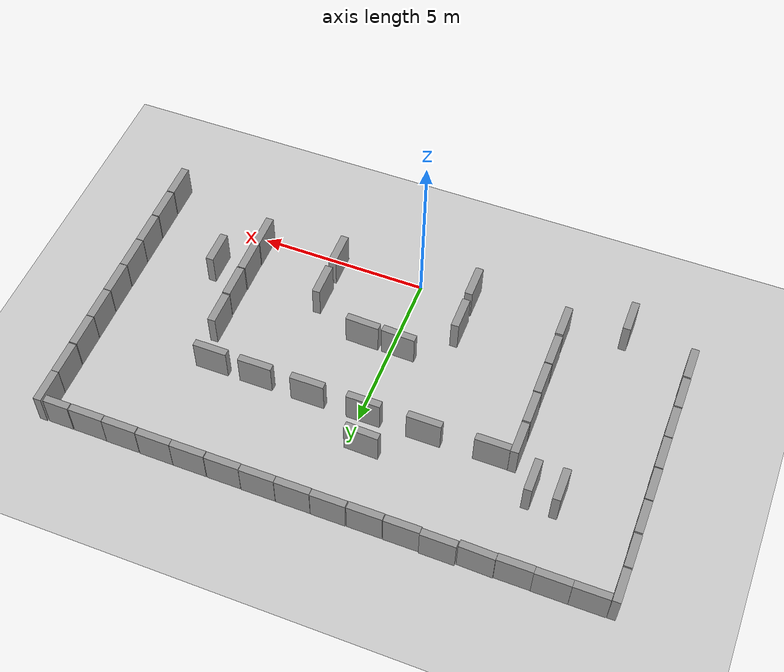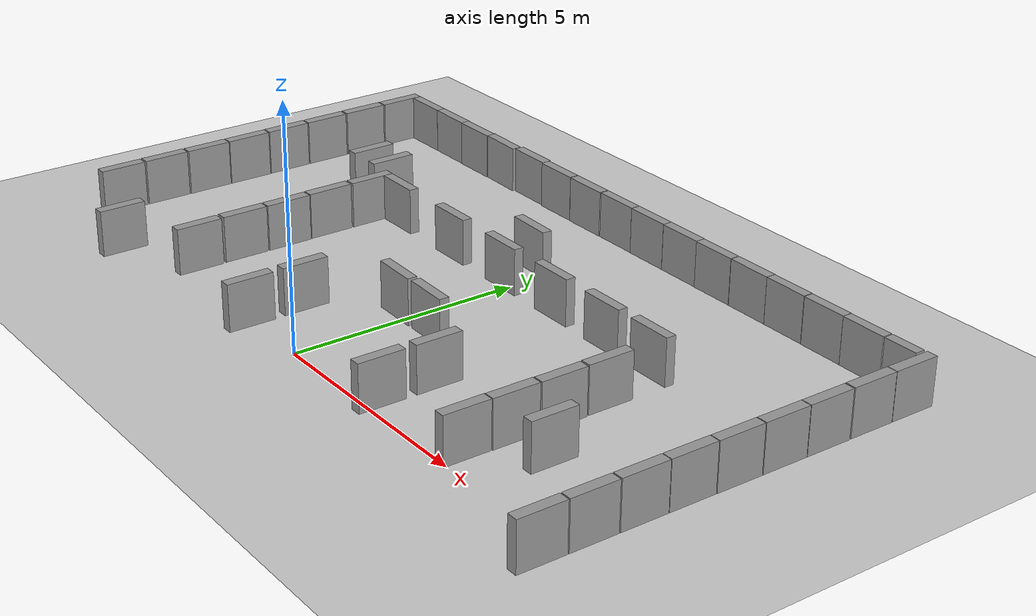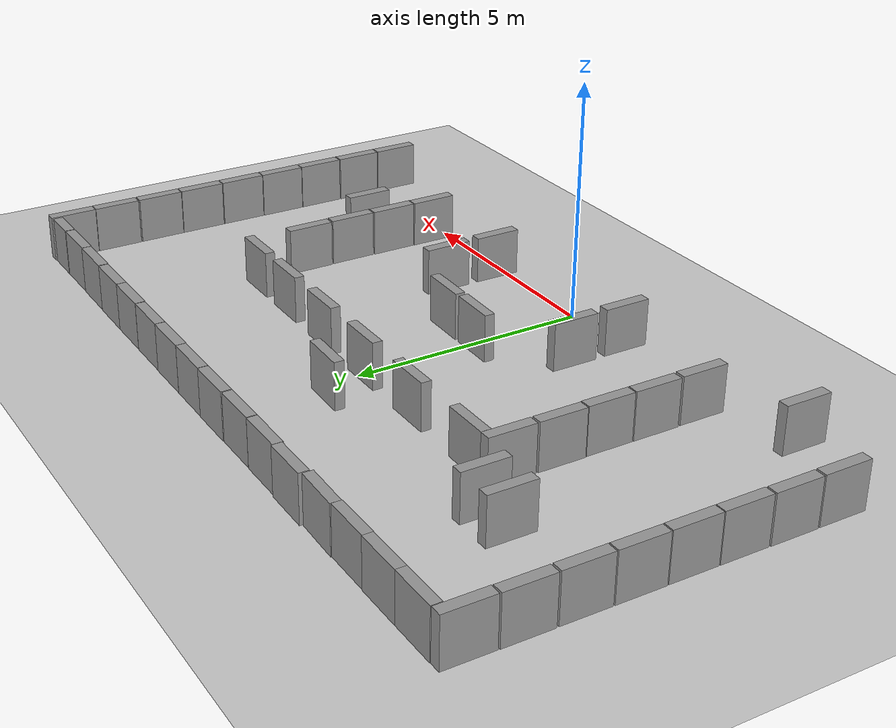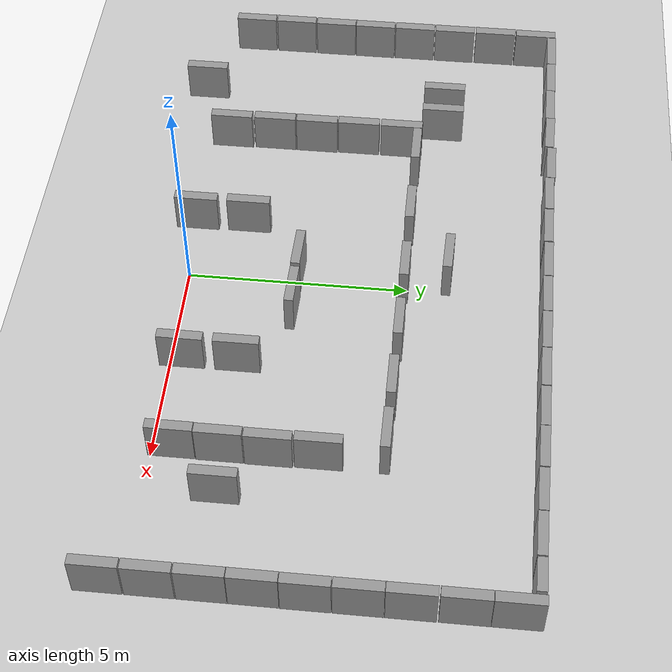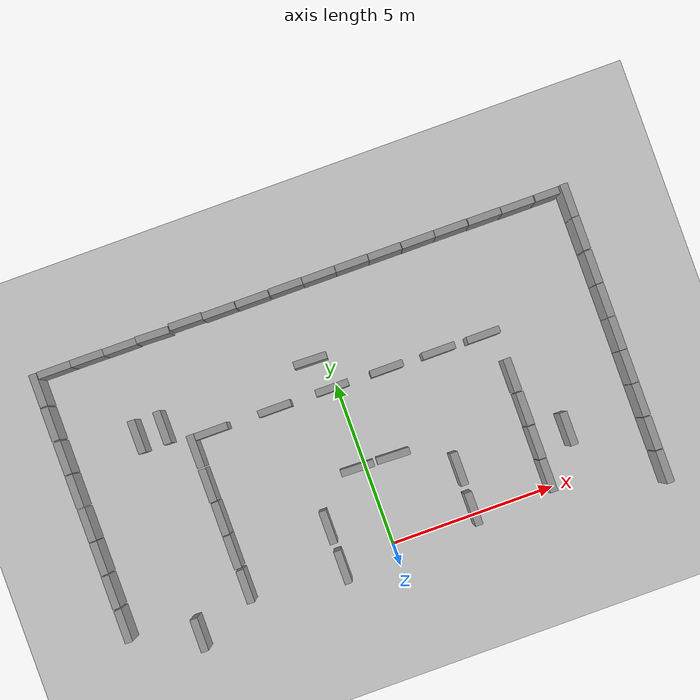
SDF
<sdf version="1.6">
 <world name="default">
  <model name="ground_plane">
   <static>1</static>
   <static>1</static>
   <link name="link">
    <collision name="collision">
     <geometry><plane><normal>0 0 1</normal><size>100 100</size></plane></geometry>
     <surface><friction><ode><mu>100</mu><mu2>50</mu2></ode></friction></surface>
    </collision>
    <visual name="visual">
     <cast_shadows>0</cast_shadows>
     <geometry><plane><normal>0 0 1</normal><size>100 100</size></plane></geometry>
     <material>
      <script><uri>file://media/materials/scripts/gazebo.material</uri><name>Gazebo/Grey</name></script>
     </material>
    </visual>
   </link>
  </model>
  <model name="unit_box_clone">
   <pose>-7.49845 8.12021 0.5 0 -0 0.000459</pose>
   <link name="link">
    <inertial>
     <mass>1</mass>
     <inertia>
      <ixx>0.166667</ixx>
      <ixy>0</ixy>
      <ixz>0</ixz>
      <iyy>0.166667</iyy>
      <iyz>0</iyz>
      <izz>0.166667</izz>
     </inertia>
    </inertial>
    <collision name="collision"><geometry><box><size>1 0.210541 1</size></box></geometry></collision>
    <visual name="visual">
     <geometry><box><size>1 0.210541 1</size></box></geometry>
     <material>
      <script><name>Gazebo/Grey</name><uri>file://media/materials/scripts/gazebo.material</uri></script>
     </material>
    </visual>
   </link>
  </model>
  <model name="unit_box_clone_0">
   <pose>-6.49725 8.11967 0.5 0 -0 -0.00258</pose>
   <link name="link">
    <inertial>
     <mass>1</mass>
     <inertia>
      <ixx>0.166667</ixx>
      <ixy>0</ixy>
      <ixz>0</ixz>
      <iyy>0.166667</iyy>
      <iyz>0</iyz>
      <izz>0.166667</izz>
     </inertia>
    </inertial>
    <collision name="collision"><geometry><box><size>1 0.210541 1</size></box></geometry></collision>
    <visual name="visual">
     <geometry><box><size>1 0.210541 1</size></box></geometry>
     <material>
      <script><name>Gazebo/Grey</name><uri>file://media/materials/scripts/gazebo.material</uri></script>
     </material>
    </visual>
   </link>
  </model>
  <model name="unit_box_clone_1">
   <pose>-5.49726 8.10836 0.499732 -2e-06 -7e-06 -0.002666</pose>
   <link name="link">
    <inertial>
     <mass>1</mass>
     <inertia>
      <ixx>0.166667</ixx>
      <ixy>0</ixy>
      <ixz>0</ixz>
      <iyy>0.166667</iyy>
      <iyz>0</iyz>
      <izz>0.166667</izz>
     </inertia>
    </inertial>
    <collision name="collision"><geometry><box><size>1 0.210541 1</size></box></geometry></collision>
    <visual name="visual">
     <geometry><box><size>1 0.210541 1</size></box></geometry>
     <material>
      <script><name>Gazebo/Grey</name><uri>file://media/materials/scripts/gazebo.material</uri></script>
     </material>
    </visual>
   </link>
  </model>
  <model name="unit_box_clone_2">
   <pose>-4.49488 8.11064 0.499996 -0 2e-06 -0.026421</pose>
   <link name="link">
    <inertial>
     <mass>1</mass>
     <inertia>
      <ixx>0.166667</ixx>
      <ixy>0</ixy>
      <ixz>0</ixz>
      <iyy>0.166667</iyy>
      <iyz>0</iyz>
      <izz>0.166667</izz>
     </inertia>
    </inertial>
    <collision name="collision"><geometry><box><size>1 0.210541 1</size></box></geometry></collision>
    <visual name="visual">
     <geometry><box><size>1 0.210541 1</size></box></geometry>
     <material>
      <script><name>Gazebo/Grey</name><uri>file://media/materials/scripts/gazebo.material</uri></script>
     </material>
    </visual>
   </link>
  </model>
  <model name="unit_box_clone_3">
   <pose>-3.46836 8.15007 0.499999 -1e-06 -2e-06 -0.007855</pose>
   <link name="link">
    <inertial>
     <mass>1</mass>
     <inertia>
      <ixx>0.166667</ixx>
      <ixy>0</ixy>
      <ixz>0</ixz>
      <iyy>0.166667</iyy>
      <iyz>0</iyz>
      <izz>0.166667</izz>
     </inertia>
    </inertial>
    <collision name="collision"><geometry><box><size>1 0.210541 1</size></box></geometry></collision>
    <visual name="visual">
     <geometry><box><size>1 0.210541 1</size></box></geometry>
     <material>
      <script><name>Gazebo/Grey</name><uri>file://media/materials/scripts/gazebo.material</uri></script>
     </material>
    </visual>
   </link>
  </model>
  <model name="unit_box_clone_4">
   <pose>-2.46316 8.1189 0.5 0 -0 0.000459</pose>
   <link name="link">
    <inertial>
     <mass>1</mass>
     <inertia>
      <ixx>0.166667</ixx>
      <ixy>0</ixy>
      <ixz>0</ixz>
      <iyy>0.166667</iyy>
      <iyz>0</iyz>
      <izz>0.166667</izz>
     </inertia>
    </inertial>
    <collision name="collision"><geometry><box><size>1 0.210541 1</size></box></geometry></collision>
    <visual name="visual">
     <geometry><box><size>1 0.210541 1</size></box></geometry>
     <material>
      <script><name>Gazebo/Grey</name><uri>file://media/materials/scripts/gazebo.material</uri></script>
     </material>
    </visual>
   </link>
  </model>
  <model name="unit_box_clone_5">
   <pose>-1.44425 8.11224 0.5 0 -0 0.000459</pose>
   <link name="link">
    <inertial>
     <mass>1</mass>
     <inertia>
      <ixx>0.166667</ixx>
      <ixy>0</ixy>
      <ixz>0</ixz>
      <iyy>0.166667</iyy>
      <iyz>0</iyz>
      <izz>0.166667</izz>
     </inertia>
    </inertial>
    <collision name="collision"><geometry><box><size>1 0.210541 1</size></box></geometry></collision>
    <visual name="visual">
     <geometry><box><size>1 0.210541 1</size></box></geometry>
     <material>
      <script><name>Gazebo/Grey</name><uri>file://media/materials/scripts/gazebo.material</uri></script>
     </material>
    </visual>
   </link>
  </model>
  <model name="unit_box_clone_6">
   <pose>-0.418686 8.11889 0.5 0 -0 0.000459</pose>
   <link name="link">
    <inertial>
     <mass>1</mass>
     <inertia>
      <ixx>0.166667</ixx>
      <ixy>0</ixy>
      <ixz>0</ixz>
      <iyy>0.166667</iyy>
      <iyz>0</iyz>
      <izz>0.166667</izz>
     </inertia>
    </inertial>
    <collision name="collision"><geometry><box><size>1 0.210541 1</size></box></geometry></collision>
    <visual name="visual">
     <geometry><box><size>1 0.210541 1</size></box></geometry>
     <material>
      <script><name>Gazebo/Grey</name><uri>file://media/materials/scripts/gazebo.material</uri></script>
     </material>
    </visual>
   </link>
  </model>
  <model name="unit_box_clone_7">
   <pose>0.592833 8.11176 0.5 0 -0 0.000459</pose>
   <link name="link">
    <inertial>
     <mass>1</mass>
     <inertia>
      <ixx>0.166667</ixx>
      <ixy>0</ixy>
      <ixz>0</ixz>
      <iyy>0.166667</iyy>
      <iyz>0</iyz>
      <izz>0.166667</izz>
     </inertia>
    </inertial>
    <collision name="collision"><geometry><box><size>1 0.210541 1</size></box></geometry></collision>
    <visual name="visual">
     <geometry><box><size>1 0.210541 1</size></box></geometry>
     <material>
      <script><name>Gazebo/Grey</name><uri>file://media/materials/scripts/gazebo.material</uri></script>
     </material>
    </visual>
   </link>
  </model>
  <model name="unit_box_clone_8">
   <pose>1.60043 8.11027 0.5 0 -0 0.000459</pose>
   <link name="link">
    <inertial>
     <mass>1</mass>
     <inertia>
      <ixx>0.166667</ixx>
      <ixy>0</ixy>
      <ixz>0</ixz>
      <iyy>0.166667</iyy>
      <iyz>0</iyz>
      <izz>0.166667</izz>
     </inertia>
    </inertial>
    <collision name="collision"><geometry><box><size>1 0.210541 1</size></box></geometry></collision>
    <visual name="visual">
     <geometry><box><size>1 0.210541 1</size></box></geometry>
     <material>
      <script><name>Gazebo/Grey</name><uri>file://media/materials/scripts/gazebo.material</uri></script>
     </material>
    </visual>
   </link>
  </model>
  <model name="unit_box_clone_9">
   <pose>2.60987 8.10308 0.5 0 -0 0.000459</pose>
   <link name="link">
    <inertial>
     <mass>1</mass>
     <inertia>
      <ixx>0.166667</ixx>
      <ixy>0</ixy>
      <ixz>0</ixz>
      <iyy>0.166667</iyy>
      <iyz>0</iyz>
      <izz>0.166667</izz>
     </inertia>
    </inertial>
    <collision name="collision"><geometry><box><size>1 0.210541 1</size></box></geometry></collision>
    <visual name="visual">
     <geometry><box><size>1 0.210541 1</size></box></geometry>
     <material>
      <script><name>Gazebo/Grey</name><uri>file://media/materials/scripts/gazebo.material</uri></script>
     </material>
    </visual>
   </link>
  </model>
  <model name="unit_box_clone_10">
   <pose>3.62649 8.09949 0.5 0 -0 0.000459</pose>
   <link name="link">
    <inertial>
     <mass>1</mass>
     <inertia>
      <ixx>0.166667</ixx>
      <ixy>0</ixy>
      <ixz>0</ixz>
      <iyy>0.166667</iyy>
      <iyz>0</iyz>
      <izz>0.166667</izz>
     </inertia>
    </inertial>
    <collision name="collision"><geometry><box><size>1 0.210541 1</size></box></geometry></collision>
    <visual name="visual">
     <geometry><box><size>1 0.210541 1</size></box></geometry>
     <material>
      <script><name>Gazebo/Grey</name><uri>file://media/materials/scripts/gazebo.material</uri></script>
     </material>
    </visual>
   </link>
  </model>
  <model name="unit_box_clone_11">
   <pose>4.6331 8.09515 0.499999 1e-06 2e-06 -0.003244</pose>
   <link name="link">
    <inertial>
     <mass>1</mass>
     <inertia>
      <ixx>0.166667</ixx>
      <ixy>0</ixy>
      <ixz>0</ixz>
      <iyy>0.166667</iyy>
      <iyz>0</iyz>
      <izz>0.166667</izz>
     </inertia>
    </inertial>
    <collision name="collision"><geometry><box><size>1 0.210541 1</size></box></geometry></collision>
    <visual name="visual">
     <geometry><box><size>1 0.210541 1</size></box></geometry>
     <material>
      <script><name>Gazebo/Grey</name><uri>file://media/materials/scripts/gazebo.material</uri></script>
     </material>
    </visual>
   </link>
  </model>
  <model name="unit_box_0_clone_0">
   <pose>8.11522 6.68458 0.5 0 0 -0.000278</pose>
   <link name="link">
    <inertial>
     <mass>1</mass>
     <inertia>
      <ixx>0.166667</ixx>
      <ixy>0</ixy>
      <ixz>0</ixz>
      <iyy>0.166667</iyy>
      <iyz>0</iyz>
      <izz>0.166667</izz>
     </inertia>
    </inertial>
    <collision name="collision"><geometry><box><size>0.230819 1 1</size></box></geometry></collision>
    <visual name="visual">
     <geometry><box><size>0.230819 1 1</size></box></geometry>
     <material>
      <script><name>Gazebo/Grey</name><uri>file://media/materials/scripts/gazebo.material</uri></script>
     </material>
    </visual>
   </link>
  </model>
  <model name="unit_box_0_clone_1">
   <pose>8.11915 5.6517 0.5 0 -0 0.000162</pose>
   <link name="link">
    <inertial>
     <mass>1</mass>
     <inertia>
      <ixx>0.166667</ixx>
      <ixy>0</ixy>
      <ixz>0</ixz>
      <iyy>0.166667</iyy>
      <iyz>0</iyz>
      <izz>0.166667</izz>
     </inertia>
    </inertial>
    <collision name="collision"><geometry><box><size>0.230819 1 1</size></box></geometry></collision>
    <visual name="visual">
     <geometry><box><size>0.230819 1 1</size></box></geometry>
     <material>
      <script><name>Gazebo/Grey</name><uri>file://media/materials/scripts/gazebo.material</uri></script>
     </material>
    </visual>
   </link>
  </model>
  <model name="unit_box_0_clone_2">
   <pose>8.11914 4.64016 0.5 0 -0 0.000256</pose>
   <link name="link">
    <inertial>
     <mass>1</mass>
     <inertia>
      <ixx>0.166667</ixx>
      <ixy>0</ixy>
      <ixz>0</ixz>
      <iyy>0.166667</iyy>
      <iyz>0</iyz>
      <izz>0.166667</izz>
     </inertia>
    </inertial>
    <collision name="collision"><geometry><box><size>0.230819 1 1</size></box></geometry></collision>
    <visual name="visual">
     <geometry><box><size>0.230819 1 1</size></box></geometry>
     <material>
      <script><name>Gazebo/Grey</name><uri>file://media/materials/scripts/gazebo.material</uri></script>
     </material>
    </visual>
   </link>
  </model>
  <model name="unit_box_0_clone_3">
   <pose>8.11914 3.62228 0.5 0 -0 0.000237</pose>
   <link name="link">
    <inertial>
     <mass>1</mass>
     <inertia>
      <ixx>0.166667</ixx>
      <ixy>0</ixy>
      <ixz>0</ixz>
      <iyy>0.166667</iyy>
      <iyz>0</iyz>
      <izz>0.166667</izz>
     </inertia>
    </inertial>
    <collision name="collision"><geometry><box><size>0.230819 1 1</size></box></geometry></collision>
    <visual name="visual">
     <geometry><box><size>0.230819 1 1</size></box></geometry>
     <material>
      <script><name>Gazebo/Grey</name><uri>file://media/materials/scripts/gazebo.material</uri></script>
     </material>
    </visual>
   </link>
  </model>
  <model name="unit_box_0_clone_4">
   <pose>8.11332 2.61063 0.5 0 -0 -0.000997</pose>
   <link name="link">
    <inertial>
     <mass>1</mass>
     <inertia>
      <ixx>0.166667</ixx>
      <ixy>0</ixy>
      <ixz>0</ixz>
      <iyy>0.166667</iyy>
      <iyz>0</iyz>
      <izz>0.166667</izz>
     </inertia>
    </inertial>
    <collision name="collision"><geometry><box><size>0.230819 1 1</size></box></geometry></collision>
    <visual name="visual">
     <geometry><box><size>0.230819 1 1</size></box></geometry>
     <material>
      <script><name>Gazebo/Grey</name><uri>file://media/materials/scripts/gazebo.material</uri></script>
     </material>
    </visual>
   </link>
  </model>
  <model name="unit_box_0_clone_5">
   <pose>8.11277 1.59919 0.5 0 -0 0.000237</pose>
   <link name="link">
    <inertial>
     <mass>1</mass>
     <inertia>
      <ixx>0.166667</ixx>
      <ixy>0</ixy>
      <ixz>0</ixz>
      <iyy>0.166667</iyy>
      <iyz>0</iyz>
      <izz>0.166667</izz>
     </inertia>
    </inertial>
    <collision name="collision"><geometry><box><size>0.230819 1 1</size></box></geometry></collision>
    <visual name="visual">
     <geometry><box><size>0.230819 1 1</size></box></geometry>
     <material>
      <script><name>Gazebo/Grey</name><uri>file://media/materials/scripts/gazebo.material</uri></script>
     </material>
    </visual>
   </link>
  </model>
  <model name="unit_box_0_clone_6">
   <pose>8.11277 0.574937 0.5 0 -0 0.000237</pose>
   <link name="link">
    <inertial>
     <mass>1</mass>
     <inertia>
      <ixx>0.166667</ixx>
      <ixy>0</ixy>
      <ixz>0</ixz>
      <iyy>0.166667</iyy>
      <iyz>0</iyz>
      <izz>0.166667</izz>
     </inertia>
    </inertial>
    <collision name="collision"><geometry><box><size>0.230819 1 1</size></box></geometry></collision>
    <visual name="visual">
     <geometry><box><size>0.230819 1 1</size></box></geometry>
     <material>
      <script><name>Gazebo/Grey</name><uri>file://media/materials/scripts/gazebo.material</uri></script>
     </material>
    </visual>
   </link>
  </model>
  <model name="unit_box_0_clone_7">
   <pose>8.11276 -0.449321 0.5 0 -0 0.000237</pose>
   <link name="link">
    <inertial>
     <mass>1</mass>
     <inertia>
      <ixx>0.166667</ixx>
      <ixy>0</ixy>
      <ixz>0</ixz>
      <iyy>0.166667</iyy>
      <iyz>0</iyz>
      <izz>0.166667</izz>
     </inertia>
    </inertial>
    <collision name="collision"><geometry><box><size>0.230819 1 1</size></box></geometry></collision>
    <visual name="visual">
     <geometry><box><size>0.230819 1 1</size></box></geometry>
     <material>
      <script><name>Gazebo/Grey</name><uri>file://media/materials/scripts/gazebo.material</uri></script>
     </material>
    </visual>
   </link>
  </model>
  <model name="unit_box_0_clone_4_clone">
   <pose>-8.12647 7.71769 0.5 0 -0 0.000237</pose>
   <link name="link">
    <inertial>
     <mass>1</mass>
     <inertia>
      <ixx>0.166667</ixx>
      <ixy>0</ixy>
      <ixz>0</ixz>
      <iyy>0.166667</iyy>
      <iyz>0</iyz>
      <izz>0.166667</izz>
     </inertia>
    </inertial>
    <collision name="collision"><geometry><box><size>0.230819 1 1</size></box></geometry></collision>
    <visual name="visual">
     <geometry><box><size>0.230819 1 1</size></box></geometry>
     <material>
      <script><name>Gazebo/Grey</name><uri>file://media/materials/scripts/gazebo.material</uri></script>
     </material>
    </visual>
   </link>
  </model>
  <model name="unit_box_0_clone_4_clone_0">
   <pose>-8.13281 6.68715 0.5 0 -0 0.000237</pose>
   <link name="link">
    <inertial>
     <mass>1</mass>
     <inertia>
      <ixx>0.166667</ixx>
      <ixy>0</ixy>
      <ixz>0</ixz>
      <iyy>0.166667</iyy>
      <iyz>0</iyz>
      <izz>0.166667</izz>
     </inertia>
    </inertial>
    <collision name="collision"><geometry><box><size>0.230819 1 1</size></box></geometry></collision>
    <visual name="visual">
     <geometry><box><size>0.230819 1 1</size></box></geometry>
     <material>
      <script><name>Gazebo/Grey</name><uri>file://media/materials/scripts/gazebo.material</uri></script>
     </material>
    </visual>
   </link>
  </model>
  <model name="unit_box_0_clone_4_clone_1">
   <pose>-8.12606 5.64722 0.5 0 -0 0.000237</pose>
   <link name="link">
    <inertial>
     <mass>1</mass>
     <inertia>
      <ixx>0.166667</ixx>
      <ixy>0</ixy>
      <ixz>0</ixz>
      <iyy>0.166667</iyy>
      <iyz>0</iyz>
      <izz>0.166667</izz>
     </inertia>
    </inertial>
    <collision name="collision"><geometry><box><size>0.230819 1 1</size></box></geometry></collision>
    <visual name="visual">
     <geometry><box><size>0.230819 1 1</size></box></geometry>
     <material>
      <script><name>Gazebo/Grey</name><uri>file://media/materials/scripts/gazebo.material</uri></script>
     </material>
    </visual>
   </link>
  </model>
  <model name="unit_box_0_clone_4_clone_2">
   <pose>-8.12607 4.6208 0.5 0 -0 0.000237</pose>
   <link name="link">
    <inertial>
     <mass>1</mass>
     <inertia>
      <ixx>0.166667</ixx>
      <ixy>0</ixy>
      <ixz>0</ixz>
      <iyy>0.166667</iyy>
      <iyz>0</iyz>
      <izz>0.166667</izz>
     </inertia>
    </inertial>
    <collision name="collision"><geometry><box><size>0.230819 1 1</size></box></geometry></collision>
    <visual name="visual">
     <geometry><box><size>0.230819 1 1</size></box></geometry>
     <material>
      <script><name>Gazebo/Grey</name><uri>file://media/materials/scripts/gazebo.material</uri></script>
     </material>
    </visual>
   </link>
  </model>
  <model name="unit_box_0_clone_4_clone_3">
   <pose>-8.11932 3.59437 0.5 0 -0 0.000237</pose>
   <link name="link">
    <inertial>
     <mass>1</mass>
     <inertia>
      <ixx>0.166667</ixx>
      <ixy>0</ixy>
      <ixz>0</ixz>
      <iyy>0.166667</iyy>
      <iyz>0</iyz>
      <izz>0.166667</izz>
     </inertia>
    </inertial>
    <collision name="collision"><geometry><box><size>0.230819 1 1</size></box></geometry></collision>
    <visual name="visual">
     <geometry><box><size>0.230819 1 1</size></box></geometry>
     <material>
      <script><name>Gazebo/Grey</name><uri>file://media/materials/scripts/gazebo.material</uri></script>
     </material>
    </visual>
   </link>
  </model>
  <model name="unit_box_0_clone_4_clone_4">
   <pose>-8.11932 2.57471 0.5 0 -0 0.000237</pose>
   <link name="link">
    <inertial>
     <mass>1</mass>
     <inertia>
      <ixx>0.166667</ixx>
      <ixy>0</ixy>
      <ixz>0</ixz>
      <iyy>0.166667</iyy>
      <iyz>0</iyz>
      <izz>0.166667</izz>
     </inertia>
    </inertial>
    <collision name="collision"><geometry><box><size>0.230819 1 1</size></box></geometry></collision>
    <visual name="visual">
     <geometry><box><size>0.230819 1 1</size></box></geometry>
     <material>
      <script><name>Gazebo/Grey</name><uri>file://media/materials/scripts/gazebo.material</uri></script>
     </material>
    </visual>
   </link>
  </model>
  <model name="unit_box_0_clone_4_clone_5">
   <pose>-8.12608 1.54157 0.5 0 -0 0.000237</pose>
   <link name="link">
    <inertial>
     <mass>1</mass>
     <inertia>
      <ixx>0.166667</ixx>
      <ixy>0</ixy>
      <ixz>0</ixz>
      <iyy>0.166667</iyy>
      <iyz>0</iyz>
      <izz>0.166667</izz>
     </inertia>
    </inertial>
    <collision name="collision"><geometry><box><size>0.230819 1 1</size></box></geometry></collision>
    <visual name="visual">
     <geometry><box><size>0.230819 1 1</size></box></geometry>
     <material>
      <script><name>Gazebo/Grey</name><uri>file://media/materials/scripts/gazebo.material</uri></script>
     </material>
    </visual>
   </link>
  </model>
  <model name="unit_box_0_clone_4_clone_6">
   <pose>-8.11933 0.501629 0.5 0 -0 0.000237</pose>
   <link name="link">
    <inertial>
     <mass>1</mass>
     <inertia>
      <ixx>0.166667</ixx>
      <ixy>0</ixy>
      <ixz>0</ixz>
      <iyy>0.166667</iyy>
      <iyz>0</iyz>
      <izz>0.166667</izz>
     </inertia>
    </inertial>
    <collision name="collision"><geometry><box><size>0.230819 1 1</size></box></geometry></collision>
    <visual name="visual">
     <geometry><box><size>0.230819 1 1</size></box></geometry>
     <material>
      <script><name>Gazebo/Grey</name><uri>file://media/materials/scripts/gazebo.material</uri></script>
     </material>
    </visual>
   </link>
  </model>
  <model name="unit_box_0_clone_0_clone">
   <pose>8.11438 7.69322 0.5 0 -0 0.000144</pose>
   <link name="link">
    <inertial>
     <mass>1</mass>
     <inertia>
      <ixx>0.166667</ixx>
      <ixy>0</ixy>
      <ixz>0</ixz>
      <iyy>0.166667</iyy>
      <iyz>0</iyz>
      <izz>0.166667</izz>
     </inertia>
    </inertial>
    <collision name="collision"><geometry><box><size>0.230819 1 1</size></box></geometry></collision>
    <visual name="visual">
     <geometry><box><size>0.230819 1 1</size></box></geometry>
     <material>
      <script><name>Gazebo/Grey</name><uri>file://media/materials/scripts/gazebo.material</uri></script>
     </material>
    </visual>
   </link>
  </model>
  <model name="unit_box_clone_11_clone">
   <pose>5.6544 8.08366 0.499999 -1e-06 -2e-06 -0.003001</pose>
   <link name="link">
    <inertial>
     <mass>1</mass>
     <inertia>
      <ixx>0.166667</ixx>
      <ixy>0</ixy>
      <ixz>0</ixz>
      <iyy>0.166667</iyy>
      <iyz>0</iyz>
      <izz>0.166667</izz>
     </inertia>
    </inertial>
    <collision name="collision"><geometry><box><size>1 0.210541 1</size></box></geometry></collision>
    <visual name="visual">
     <geometry><box><size>1 0.210541 1</size></box></geometry>
     <material>
      <script><name>Gazebo/Grey</name><uri>file://media/materials/scripts/gazebo.material</uri></script>
     </material>
    </visual>
   </link>
  </model>
  <model name="unit_box_clone_11_clone_0">
   <pose>6.6644 8.07339 0.499999 1e-06 2e-06 -0.003151</pose>
   <link name="link">
    <inertial>
     <mass>1</mass>
     <inertia>
      <ixx>0.166667</ixx>
      <ixy>0</ixy>
      <ixz>0</ixz>
      <iyy>0.166667</iyy>
      <iyz>0</iyz>
      <izz>0.166667</izz>
     </inertia>
    </inertial>
    <collision name="collision"><geometry><box><size>1 0.210541 1</size></box></geometry></collision>
    <visual name="visual">
     <geometry><box><size>1 0.210541 1</size></box></geometry>
     <material>
      <script><name>Gazebo/Grey</name><uri>file://media/materials/scripts/gazebo.material</uri></script>
     </material>
    </visual>
   </link>
  </model>
  <model name="unit_box_clone_11_clone_1_clone">
   <pose>7.56437 8.07323 0.499997 2e-06 -7e-06 -0.004111</pose>
   <link name="link">
    <inertial>
     <mass>1</mass>
     <inertia>
      <ixx>0.166667</ixx>
      <ixy>0</ixy>
      <ixz>0</ixz>
      <iyy>0.166667</iyy>
      <iyz>0</iyz>
      <izz>0.166667</izz>
     </inertia>
    </inertial>
    <collision name="collision"><geometry><box><size>0.750223 0.210541 1</size></box></geometry></collision>
    <visual name="visual">
     <geometry><box><size>0.750223 0.210541 1</size></box></geometry>
     <material>
      <script><name>Gazebo/Grey</name><uri>file://media/materials/scripts/gazebo.material</uri></script>
     </material>
    </visual>
   </link>
  </model>
  <model name="unit_box_clone_2_clone">
   <pose>-0.238494 2.50062 0.499999 -1e-06 -2e-06 -0.026777</pose>
   <link name="link">
    <inertial>
     <mass>1</mass>
     <inertia>
      <ixx>0.166667</ixx>
      <ixy>0</ixy>
      <ixz>0</ixz>
      <iyy>0.166667</iyy>
      <iyz>0</iyz>
      <izz>0.166667</izz>
     </inertia>
    </inertial>
    <collision name="collision"><geometry><box><size>1 0.210541 1</size></box></geometry></collision>
    <visual name="visual">
     <geometry><box><size>1 0.210541 1</size></box></geometry>
     <material>
      <script><name>Gazebo/Grey</name><uri>file://media/materials/scripts/gazebo.material</uri></script>
     </material>
    </visual>
   </link>
  </model>
  <model name="unit_box_clone_2_clone_0">
   <pose>0.85373 2.48433 0.499999 -1e-06 2e-06 -0.026776</pose>
   <link name="link">
    <inertial>
     <mass>1</mass>
     <inertia>
      <ixx>0.166667</ixx>
      <ixy>0</ixy>
      <ixz>0</ixz>
      <iyy>0.166667</iyy>
      <iyz>0</iyz>
      <izz>0.166667</izz>
     </inertia>
    </inertial>
    <collision name="collision"><geometry><box><size>1 0.210541 1</size></box></geometry></collision>
    <visual name="visual">
     <geometry><box><size>1 0.210541 1</size></box></geometry>
     <material>
      <script><name>Gazebo/Grey</name><uri>file://media/materials/scripts/gazebo.material</uri></script>
     </material>
    </visual>
   </link>
  </model>
  <model name="unit_box_0_clone_4_clone_6_clone">
   <pose>-1.60785 1.18012 0.5 0 -0 0.000236</pose>
   <link name="link">
    <inertial>
     <mass>1</mass>
     <inertia>
      <ixx>0.166667</ixx>
      <ixy>0</ixy>
      <ixz>0</ixz>
      <iyy>0.166667</iyy>
      <iyz>0</iyz>
      <izz>0.166667</izz>
     </inertia>
    </inertial>
    <collision name="collision"><geometry><box><size>0.230819 1 1</size></box></geometry></collision>
    <visual name="visual">
     <geometry><box><size>0.230819 1 1</size></box></geometry>
     <material>
      <script><name>Gazebo/Grey</name><uri>file://media/materials/scripts/gazebo.material</uri></script>
     </material>
    </visual>
   </link>
  </model>
  <model name="unit_box_0_clone_4_clone_6_clone_0">
   <pose>-1.59156 -0.042519 0.5 0 -0 0.000248</pose>
   <link name="link">
    <inertial>
     <mass>1</mass>
     <inertia>
      <ixx>0.166667</ixx>
      <ixy>0</ixy>
      <ixz>0</ixz>
      <iyy>0.166667</iyy>
      <iyz>0</iyz>
      <izz>0.166667</izz>
     </inertia>
    </inertial>
    <collision name="collision"><geometry><box><size>0.230819 1 1</size></box></geometry></collision>
    <visual name="visual">
     <geometry><box><size>0.230819 1 1</size></box></geometry>
     <material>
      <script><name>Gazebo/Grey</name><uri>file://media/materials/scripts/gazebo.material</uri></script>
     </material>
    </visual>
   </link>
  </model>
  <model name="unit_box_0_clone_4_clone_6_clone_2">
   <pose>2.51651 1.48984 0.5 0 -0 0.000329</pose>
   <link name="link">
    <inertial>
     <mass>1</mass>
     <inertia>
      <ixx>0.166667</ixx>
      <ixy>0</ixy>
      <ixz>0</ixz>
      <iyy>0.166667</iyy>
      <iyz>0</iyz>
      <izz>0.166667</izz>
     </inertia>
    </inertial>
    <collision name="collision"><geometry><box><size>0.230819 1 1</size></box></geometry></collision>
    <visual name="visual">
     <geometry><box><size>0.230819 1 1</size></box></geometry>
     <material>
      <script><name>Gazebo/Grey</name><uri>file://media/materials/scripts/gazebo.material</uri></script>
     </material>
    </visual>
   </link>
  </model>
  <model name="unit_box_0_clone_4_clone_6_clone_3">
   <pose>2.5165 0.267193 0.5 0 -0 0.000316</pose>
   <link name="link">
    <inertial>
     <mass>1</mass>
     <inertia>
      <ixx>0.166667</ixx>
      <ixy>0</ixy>
      <ixz>0</ixz>
      <iyy>0.166667</iyy>
      <iyz>0</iyz>
      <izz>0.166667</izz>
     </inertia>
    </inertial>
    <collision name="collision"><geometry><box><size>0.230819 1 1</size></box></geometry></collision>
    <visual name="visual">
     <geometry><box><size>0.230819 1 1</size></box></geometry>
     <material>
      <script><name>Gazebo/Grey</name><uri>file://media/materials/scripts/gazebo.material</uri></script>
     </material>
    </visual>
   </link>
  </model>
  <model name="unit_box_0_clone_4_clone_6_clone_6">
   <pose>-4.44437 1.44095 0.5 0 -0 0.000248</pose>
   <link name="link">
    <inertial>
     <mass>1</mass>
     <inertia>
      <ixx>0.166667</ixx>
      <ixy>0</ixy>
      <ixz>0</ixz>
      <iyy>0.166667</iyy>
      <iyz>0</iyz>
      <izz>0.166667</izz>
     </inertia>
    </inertial>
    <collision name="collision"><geometry><box><size>0.230819 1 1</size></box></geometry></collision>
    <visual name="visual">
     <geometry><box><size>0.230819 1 1</size></box></geometry>
     <material>
      <script><name>Gazebo/Grey</name><uri>file://media/materials/scripts/gazebo.material</uri></script>
     </material>
    </visual>
   </link>
  </model>
  <model name="unit_box_0_clone_4_clone_6_clone_7">
   <pose>-4.42807 0.381339 0.5 0 -0 0.000257</pose>
   <link name="link">
    <inertial>
     <mass>1</mass>
     <inertia>
      <ixx>0.166667</ixx>
      <ixy>0</ixy>
      <ixz>0</ixz>
      <iyy>0.166667</iyy>
      <iyz>0</iyz>
      <izz>0.166667</izz>
     </inertia>
    </inertial>
    <collision name="collision"><geometry><box><size>0.230819 1 1</size></box></geometry></collision>
    <visual name="visual">
     <geometry><box><size>0.230819 1 1</size></box></geometry>
     <material>
      <script><name>Gazebo/Grey</name><uri>file://media/materials/scripts/gazebo.material</uri></script>
     </material>
    </visual>
   </link>
  </model>
  <model name="unit_box_0_clone_4_clone_6_clone_12">
   <pose>-4.44437 2.46798 0.5 0 -0 0.000246</pose>
   <link name="link">
    <inertial>
     <mass>1</mass>
     <inertia>
      <ixx>0.166667</ixx>
      <ixy>0</ixy>
      <ixz>0</ixz>
      <iyy>0.166667</iyy>
      <iyz>0</iyz>
      <izz>0.166667</izz>
     </inertia>
    </inertial>
    <collision name="collision"><geometry><box><size>0.230819 1 1</size></box></geometry></collision>
    <visual name="visual">
     <geometry><box><size>0.230819 1 1</size></box></geometry>
     <material>
      <script><name>Gazebo/Grey</name><uri>file://media/materials/scripts/gazebo.material</uri></script>
     </material>
    </visual>
   </link>
  </model>
  <model name="unit_box_0_clone_4_clone_6_clone_13">
   <pose>-4.46066 3.49499 0.5 0 -0 0.000261</pose>
   <link name="link">
    <inertial>
     <mass>1</mass>
     <inertia>
      <ixx>0.166667</ixx>
      <ixy>0</ixy>
      <ixz>0</ixz>
      <iyy>0.166667</iyy>
      <iyz>0</iyz>
      <izz>0.166667</izz>
     </inertia>
    </inertial>
    <collision name="collision"><geometry><box><size>0.230819 1 1</size></box></geometry></collision>
    <visual name="visual">
     <geometry><box><size>0.230819 1 1</size></box></geometry>
     <material>
      <script><name>Gazebo/Grey</name><uri>file://media/materials/scripts/gazebo.material</uri></script>
     </material>
    </visual>
   </link>
  </model>
  <model name="unit_box_0_clone_4_clone_6_clone_14">
   <pose>-4.46066 4.53831 0.5 0 -0 0.000277</pose>
   <link name="link">
    <inertial>
     <mass>1</mass>
     <inertia>
      <ixx>0.166667</ixx>
      <ixy>0</ixy>
      <ixz>0</ixz>
      <iyy>0.166667</iyy>
      <iyz>0</iyz>
      <izz>0.166667</izz>
     </inertia>
    </inertial>
    <collision name="collision"><geometry><box><size>0.230819 1 1</size></box></geometry></collision>
    <visual name="visual">
     <geometry><box><size>0.230819 1 1</size></box></geometry>
     <material>
      <script><name>Gazebo/Grey</name><uri>file://media/materials/scripts/gazebo.material</uri></script>
     </material>
    </visual>
   </link>
  </model>
  <model name="unit_box_clone_4_clone">
   <pose>-3.84118 4.92951 0.499999 -1e-06 2e-06 0.000423</pose>
   <link name="link">
    <inertial>
     <mass>1</mass>
     <inertia>
      <ixx>0.166667</ixx>
      <ixy>0</ixy>
      <ixz>0</ixz>
      <iyy>0.166667</iyy>
      <iyz>0</iyz>
      <izz>0.166667</izz>
     </inertia>
    </inertial>
    <collision name="collision"><geometry><box><size>1 0.210541 1</size></box></geometry></collision>
    <visual name="visual">
     <geometry><box><size>1 0.210541 1</size></box></geometry>
     <material>
      <script><name>Gazebo/Grey</name><uri>file://media/materials/scripts/gazebo.material</uri></script>
     </material>
    </visual>
   </link>
  </model>
  <model name="unit_box_clone_4_clone_0">
   <pose>-1.90127 4.92952 0.5 0 -0 0.000439</pose>
   <link name="link">
    <inertial>
     <mass>1</mass>
     <inertia>
      <ixx>0.166667</ixx>
      <ixy>0</ixy>
      <ixz>0</ixz>
      <iyy>0.166667</iyy>
      <iyz>0</iyz>
      <izz>0.166667</izz>
     </inertia>
    </inertial>
    <collision name="collision"><geometry><box><size>1 0.210541 1</size></box></geometry></collision>
    <visual name="visual">
     <geometry><box><size>1 0.210541 1</size></box></geometry>
     <material>
      <script><name>Gazebo/Grey</name><uri>file://media/materials/scripts/gazebo.material</uri></script>
     </material>
    </visual>
   </link>
  </model>
  <model name="unit_box_clone_4_clone_1">
   <pose>-0.140674 4.92951 0.499999 -1e-06 2e-06 0.000431</pose>
   <link name="link">
    <inertial>
     <mass>1</mass>
     <inertia>
      <ixx>0.166667</ixx>
      <ixy>0</ixy>
      <ixz>0</ixz>
      <iyy>0.166667</iyy>
      <iyz>0</iyz>
      <izz>0.166667</izz>
     </inertia>
    </inertial>
    <collision name="collision"><geometry><box><size>1 0.210541 1</size></box></geometry></collision>
    <visual name="visual">
     <geometry><box><size>1 0.210541 1</size></box></geometry>
     <material>
      <script><name>Gazebo/Grey</name><uri>file://media/materials/scripts/gazebo.material</uri></script>
     </material>
    </visual>
   </link>
  </model>
  <model name="unit_box_clone_4_clone_2">
   <pose>1.5279 4.91688 0.5 0 -0 0.000378</pose>
   <link name="link">
    <inertial>
     <mass>1</mass>
     <inertia>
      <ixx>0.166667</ixx>
      <ixy>0</ixy>
      <ixz>0</ixz>
      <iyy>0.166667</iyy>
      <iyz>0</iyz>
      <izz>0.166667</izz>
     </inertia>
    </inertial>
    <collision name="collision"><geometry><box><size>1 0.210541 1</size></box></geometry></collision>
    <visual name="visual">
     <geometry><box><size>1 0.210541 1</size></box></geometry>
     <material>
      <script><name>Gazebo/Grey</name><uri>file://media/materials/scripts/gazebo.material</uri></script>
     </material>
    </visual>
   </link>
  </model>
  <model name="unit_box_clone_4_clone_3">
   <pose>3.10907 4.89677 0.499999 -1e-06 2e-06 0.000423</pose>
   <link name="link">
    <inertial>
     <mass>1</mass>
     <inertia>
      <ixx>0.166667</ixx>
      <ixy>0</ixy>
      <ixz>0</ixz>
      <iyy>0.166667</iyy>
      <iyz>0</iyz>
      <izz>0.166667</izz>
     </inertia>
    </inertial>
    <collision name="collision"><geometry><box><size>1 0.210541 1</size></box></geometry></collision>
    <visual name="visual">
     <geometry><box><size>1 0.210541 1</size></box></geometry>
     <material>
      <script><name>Gazebo/Grey</name><uri>file://media/materials/scripts/gazebo.material</uri></script>
     </material>
    </visual>
   </link>
  </model>
  <model name="unit_box_clone_4_clone_4">
   <pose>4.47597 4.88717 0.5 0 -0 0.000439</pose>
   <link name="link">
    <inertial>
     <mass>1</mass>
     <inertia>
      <ixx>0.166667</ixx>
      <ixy>0</ixy>
      <ixz>0</ixz>
      <iyy>0.166667</iyy>
      <iyz>0</iyz>
      <izz>0.166667</izz>
     </inertia>
    </inertial>
    <collision name="collision"><geometry><box><size>1 0.210541 1</size></box></geometry></collision>
    <visual name="visual">
     <geometry><box><size>1 0.210541 1</size></box></geometry>
     <material>
      <script><name>Gazebo/Grey</name><uri>file://media/materials/scripts/gazebo.material</uri></script>
     </material>
    </visual>
   </link>
  </model>
  <model name="unit_box_0_clone_4_clone_6_clone_2_clone">
   <pose>4.87238 3.52357 0.5 0 -0 0.000265</pose>
   <link name="link">
    <inertial>
     <mass>1</mass>
     <inertia>
      <ixx>0.166667</ixx>
      <ixy>0</ixy>
      <ixz>0</ixz>
      <iyy>0.166667</iyy>
      <iyz>0</iyz>
      <izz>0.166667</izz>
     </inertia>
    </inertial>
    <collision name="collision"><geometry><box><size>0.230819 1 1</size></box></geometry></collision>
    <visual name="visual">
     <geometry><box><size>0.230819 1 1</size></box></geometry>
     <material>
      <script><name>Gazebo/Grey</name><uri>file://media/materials/scripts/gazebo.material</uri></script>
     </material>
    </visual>
   </link>
  </model>
  <model name="unit_box_0_clone_4_clone_6_clone_2_clone_0">
   <pose>4.88788 2.48488 0.5 0 -0 0.000259</pose>
   <link name="link">
    <inertial>
     <mass>1</mass>
     <inertia>
      <ixx>0.166667</ixx>
      <ixy>0</ixy>
      <ixz>0</ixz>
      <iyy>0.166667</iyy>
      <iyz>0</iyz>
      <izz>0.166667</izz>
     </inertia>
    </inertial>
    <collision name="collision"><geometry><box><size>0.230819 1 1</size></box></geometry></collision>
    <visual name="visual">
     <geometry><box><size>0.230819 1 1</size></box></geometry>
     <material>
      <script><name>Gazebo/Grey</name><uri>file://media/materials/scripts/gazebo.material</uri></script>
     </material>
    </visual>
   </link>
  </model>
  <model name="unit_box_0_clone_4_clone_6_clone_2_clone_1">
   <pose>4.87679 1.45907 0.5 0 -0 0.000288</pose>
   <link name="link">
    <inertial>
     <mass>1</mass>
     <inertia>
      <ixx>0.166667</ixx>
      <ixy>0</ixy>
      <ixz>0</ixz>
      <iyy>0.166667</iyy>
      <iyz>0</iyz>
      <izz>0.166667</izz>
     </inertia>
    </inertial>
    <collision name="collision"><geometry><box><size>0.230819 1 1</size></box></geometry></collision>
    <visual name="visual">
     <geometry><box><size>0.230819 1 1</size></box></geometry>
     <material>
      <script><name>Gazebo/Grey</name><uri>file://media/materials/scripts/gazebo.material</uri></script>
     </material>
    </visual>
   </link>
  </model>
  <model name="unit_box_0_clone_4_clone_6_clone_2_clone_2">
   <pose>4.86661 0.441932 0.5 0 -0 0.00032</pose>
   <link name="link">
    <inertial>
     <mass>1</mass>
     <inertia>
      <ixx>0.166667</ixx>
      <ixy>0</ixy>
      <ixz>0</ixz>
      <iyy>0.166667</iyy>
      <iyz>0</iyz>
      <izz>0.166667</izz>
     </inertia>
    </inertial>
    <collision name="collision"><geometry><box><size>0.230819 1 1</size></box></geometry></collision>
    <visual name="visual">
     <geometry><box><size>0.230819 1 1</size></box></geometry>
     <material>
      <script><name>Gazebo/Grey</name><uri>file://media/materials/scripts/gazebo.material</uri></script>
     </material>
    </visual>
   </link>
  </model>
  <model name="unit_box_0_clone_4_clone_6_clone_2_clone_2_clone_1">
   <pose>5.87686 1.51403 0.5 0 -0 0.000239</pose>
   <link name="link">
    <inertial>
     <mass>1</mass>
     <inertia>
      <ixx>0.166667</ixx>
      <ixy>0</ixy>
      <ixz>0</ixz>
      <iyy>0.166667</iyy>
      <iyz>0</iyz>
      <izz>0.166667</izz>
     </inertia>
    </inertial>
    <collision name="collision"><geometry><box><size>0.230819 1 1</size></box></geometry></collision>
    <visual name="visual">
     <geometry><box><size>0.230819 1 1</size></box></geometry>
     <material>
      <script><name>Gazebo/Grey</name><uri>file://media/materials/scripts/gazebo.material</uri></script>
     </material>
    </visual>
   </link>
  </model>
  <model name="unit_box_0_clone_4_clone_6_clone_2_clone_2_clone_3">
   <pose>-6.1497 -0.484264 0.5 -1e-06 -1e-06 0.000259</pose>
   <link name="link">
    <inertial>
     <mass>1</mass>
     <inertia>
      <ixx>0.166667</ixx>
      <ixy>0</ixy>
      <ixz>0</ixz>
      <iyy>0.166667</iyy>
      <iyz>0</iyz>
      <izz>0.166667</izz>
     </inertia>
    </inertial>
    <collision name="collision"><geometry><box><size>0.230819 1 1</size></box></geometry></collision>
    <visual name="visual">
     <geometry><box><size>0.230819 1 1</size></box></geometry>
     <material>
      <script><name>Gazebo/Grey</name><uri>file://media/materials/scripts/gazebo.material</uri></script>
     </material>
    </visual>
   </link>
  </model>
  <model name="unit_box_0_clone_4_clone_6_clone_2_clone_2_clone_5">
   <pose>-5.91126 5.50403 0.5 0 -0 0.000259</pose>
   <link name="link">
    <inertial>
     <mass>1</mass>
     <inertia>
      <ixx>0.166667</ixx>
      <ixy>0</ixy>
      <ixz>0</ixz>
      <iyy>0.166667</iyy>
      <iyz>0</iyz>
      <izz>0.166667</izz>
     </inertia>
    </inertial>
    <collision name="collision"><geometry><box><size>0.230819 1 1</size></box></geometry></collision>
    <visual name="visual">
     <geometry><box><size>0.230819 1 1</size></box></geometry>
     <material>
      <script><name>Gazebo/Grey</name><uri>file://media/materials/scripts/gazebo.material</uri></script>
     </material>
    </visual>
   </link>
  </model>
  <model name="unit_box_0_clone_4_clone_6_clone_2_clone_2_clone_6">
   <pose>-5.1331 5.50403 0.499997 6e-06 -1e-06 0.00027</pose>
   <link name="link">
    <inertial>
     <mass>1</mass>
     <inertia>
      <ixx>0.166667</ixx>
      <ixy>0</ixy>
      <ixz>0</ixz>
      <iyy>0.166667</iyy>
      <iyz>0</iyz>
      <izz>0.166667</izz>
     </inertia>
    </inertial>
    <collision name="collision"><geometry><box><size>0.230819 1 1</size></box></geometry></collision>
    <visual name="visual">
     <geometry><box><size>0.230819 1 1</size></box></geometry>
     <material>
      <script><name>Gazebo/Grey</name><uri>file://media/materials/scripts/gazebo.material</uri></script>
     </material>
    </visual>
   </link>
  </model>
  <model name="unit_box_clone_2_clone_1_clone_4">
   <pose>-0.463108 5.89039 0.5 -0 -0 -0.026808</pose>
   <link name="link">
    <inertial>
     <mass>1</mass>
     <inertia>
      <ixx>0.166667</ixx>
      <ixy>0</ixy>
      <ixz>0</ixz>
      <iyy>0.166667</iyy>
      <iyz>0</iyz>
      <izz>0.166667</izz>
     </inertia>
    </inertial>
    <collision name="collision"><geometry><box><size>1 0.210541 1</size></box></geometry></collision>
    <visual name="visual">
     <geometry><box><size>1 0.210541 1</size></box></geometry>
     <material>
      <script><name>Gazebo/Grey</name><uri>file://media/materials/scripts/gazebo.material</uri></script>
     </material>
    </visual>
   </link>
  </model>
 </world>
</sdf>
